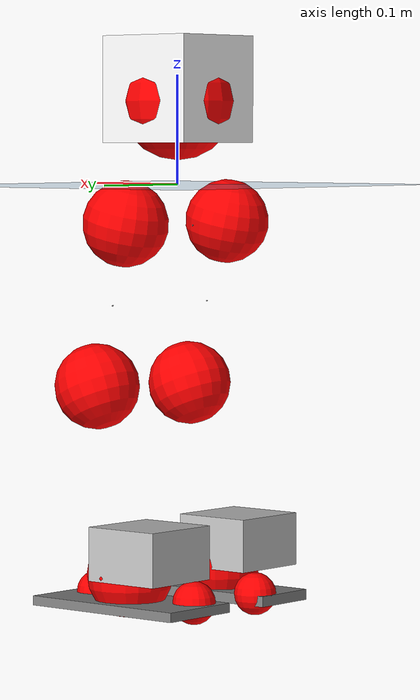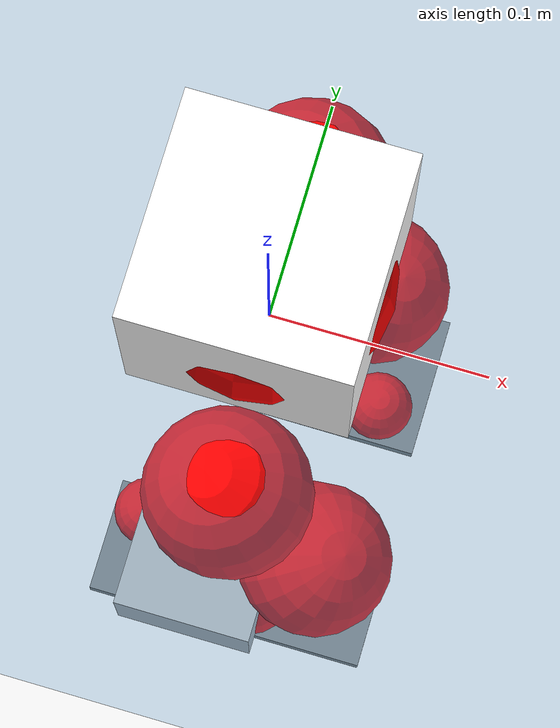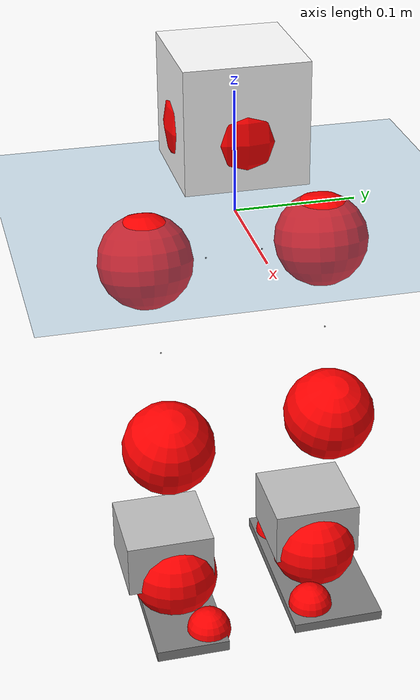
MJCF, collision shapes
<mujoco model="pi_12dof_release_v1">
  <compiler angle="radian" assetdir="assets" balanceinertia="true" inertiafromgeom="false"/>

  <option timestep="0.005" density="1.2" viscosity="2e-05"/>

  <size nkey="1"/>

  <visual>
    <quality shadowsize="8192"/>
    <map shadowclip="0.5"/>
  </visual>

  <default>
    <default class="/">
      <joint armature="0.01" damping="0.01" frictionloss="0.01"/>
      <geom contype="0" conaffinity="0" group="1" solref="-1000 -80"/>
      <site size="0.01 0.005 0.005" group="5"/>
      <general forcelimited="true" biastype="affine" gainprm="20" biasprm="0 -20 -0.5"/>
      <default class="foot">
        <geom size="0.0845 0.036 0.005" type="box" condim="6" group="4" priority="1" friction="0.9 0.2 0.2" solimp="0.015 1 0.005"/>
      </default>
      <default class="reward_collision_sphere">
        <geom group="5" rgba="1 0 0 1"/>
      </default>
    </default>
  </default>

  <asset>
    <texture type="skybox" colorspace="auto" name="//unnamed_texture_0" builtin="gradient" rgb1="0.95 0.95 0.95" rgb2="0.95 0.95 0.95" width="100" height="600"/>
    <texture type="2d" colorspace="auto" name="texplane" builtin="checker" rgb1="0.345 0.575 0.748" rgb2="0.345 0.575 0.748" markrgb="1 1 1" width="512" height="512"/>
    <material name="MatPlane" class="/" texture="texplane" texuniform="true" texrepeat="2 2" specular="0.9"/>
    <mesh name="baselink_1" class="/" file="baselink_1.STL"/>
    <mesh name="r_hip_pitch_link" class="/" file="r_hip_pitch_link.STL"/>
    <mesh name="r_hip_roll_link" class="/" file="r_hip_roll_link.STL"/>
    <mesh name="r_thigh_link" class="/" file="r_thigh_link.STL"/>
    <mesh name="r_calf_link" class="/" file="r_calf_link.STL"/>
    <mesh name="r_ankle_pitch_link" class="/" file="r_ankle_pitch_link.STL"/>
    <mesh name="r_ankle_roll_link" class="/" file="r_ankle_roll_link.STL"/>
    <mesh name="l_hip_pitch_link" class="/" file="l_hip_pitch_link.STL"/>
    <mesh name="l_hip_roll_link" class="/" file="l_hip_roll_link.STL"/>
    <mesh name="l_thigh_link" class="/" file="l_thigh_link.STL"/>
    <mesh name="l_calf_link" class="/" file="l_calf_link.STL"/>
    <mesh name="l_ankle_pitch_link" class="/" file="l_ankle_pitch_link.STL"/>
    <mesh name="l_ankle_roll_link" class="/" file="l_ankle_roll_link.STL"/>
  </asset>

  <worldbody>
    <geom name="floor" class="/" size="100 100 0.125" type="plane" group="0" material="MatPlane"/>
    <light name="toplight_shadow" class="/" pos="0 0 5" dir="0.0990148 0.0990148 -0.990148" type="directional" ambient="0.04 0.04 0.04" diffuse="0.55 0.55 0.55" specular="0.12 0.12 0.12"/>
    <light name="toplight_fill" class="/" pos="0 0 5" dir="0.0990148 0.0990148 -0.990148" type="directional" castshadow="false" ambient="0.04 0.04 0.04" diffuse="0.3 0.3 0.3" specular="0.08 0.08 0.08"/>
    <body name="trunk" pos="0.000839989 -0.0020855 -0.00246504" quat="0.999999 0.000527062 0.000786334 -0.000403667">
      <inertial pos="-0.000277221 0.000681894 0.0472156" quat="0.690071 0.000506653 0.0149443 0.723587" mass="2.06564" diaginertia="0.00474417 0.00691969 0.00751189"/>
      <joint name="//unnamed_joint_0" type="free"/>
      <geom name="//unnamed_geom_1" class="/" type="mesh" density="0" rgba="1 1 1 1" mesh="baselink_1"/>
      <geom name="//unnamed_geom_2" class="/" size="0.0488218 0.0488218 0.0488218" pos="0 0 0.0896386" type="box" rgba="1 1 1 1"/>
      <geom name="//unnamed_geom_3" class="reward_collision_sphere" size="0.0537039" pos="0 0 0.0784338"/>
      <site name="imu" class="/" pos="-8.39943e-05 -0.00348211 -0.00351039" size="0.00976435"/>
      <camera name="track" class="/" pos="0 -1.89512 0" quat="0.707107 0.707107 0 0" mode="trackcom"/>
      <camera name="ego_camera" class="/" pos="0.0645949 0 0.201687" quat="-0.5 -0.5 0.5 0.5"/>
      <body name="r_hip_pitch_link" pos="0.00158227 -0.0227206 -0.0358227" quat="0.992229 -2.10533e-05 -0.124422 -8.65175e-05">
        <inertial pos="0.000622459 -0.0537529 -0.000803701" quat="-0.00873828 0.706217 -0.0304266 0.707288" mass="0.347172" diaginertia="5.2862e-05 7.37893e-05 0.00015124"/>
        <joint name="r_hip_pitch_joint" class="/" pos="0 0 0" axis="-0.000569713 -0.999975 0.00709883" stiffness="0.0109221" range="-1.70136 1.29888" armature="0.00995736" damping="0.00762192" frictionloss="0.00956907"/>
        <geom name="//unnamed_geom_4" class="/" type="mesh" density="0" rgba="0.75294 0.75294 0.75294 1" mesh="r_hip_pitch_link"/>
        <geom name="//unnamed_geom_5" class="/" size="0.000488218 0.000488218 0.000488218" type="box" rgba="0.75294 0.75294 0.75294 1"/>
        <body name="r_hip_roll_link" pos="0.00100032 -0.0499281 0.00290188" quat="1 0.000430205 -5.54164e-05 -0.00062321">
          <inertial pos="0.000286705 -0.0030428 -0.0718818" quat="0.696176 -0.0790054 -0.0835709 0.708599" mass="0.37115" diaginertia="0.000156736 0.000208474 0.000226065"/>
          <joint name="r_hip_roll_joint" class="/" pos="0 0 0" axis="-0.999916 0.0108017 -0.0071203" range="-0.11953 0.518195" armature="0.0104286" damping="0.0135265" frictionloss="0.00977926"/>
          <geom name="//unnamed_geom_6" class="/" type="mesh" density="0" rgba="0.75294 0.75294 0.75294 1" mesh="r_hip_roll_link"/>
          <geom name="//unnamed_geom_7" class="/" size="0.000488218 0.000488218 0.000488218" type="box" rgba="0.75294 0.75294 0.75294 1"/>
          <geom name="//unnamed_geom_8" class="reward_collision_sphere" size="0.0390574"/>
          <body name="r_thigh_link" pos="-0.000455252 0.00685577 -0.0773866" quat="1 -0.00010715 0.00013945 -8.12977e-05">
            <inertial pos="0.000321339 -0.000809923 -0.0544648" quat="0.746115 0.665815 -0.000709694 -0.00169815" mass="0.105253" diaginertia="5.77608e-05 6.99937e-05 9.93615e-05"/>
            <joint name="r_thigh_joint" class="/" pos="0 0 0" axis="0.000754194 0.000566692 -1" range="-0.282823 0.611242" armature="0.0102163" damping="0.0138042" frictionloss="0.00939375"/>
            <geom name="//unnamed_geom_9" class="/" type="mesh" density="0" rgba="0.75294 0.75294 0.75294 1" mesh="r_thigh_link"/>
            <geom name="//unnamed_geom_10" class="/" size="0.000488218 0.000488218 0.000488218" type="box" rgba="0.75294 0.75294 0.75294 1"/>
            <body name="r_calf_link" pos="0.00171769 -7.48353e-05 -0.0811578" quat="0.947695 -6.56832e-06 0.319178 0.00085028">
              <inertial pos="-0.00210526 0.00212424 -0.0805907" quat="0.999985 -0.00302587 6.17296e-05 0.00465911" mass="0.723396" diaginertia="0.00161142 0.00267352 0.000314743"/>
              <joint name="r_calf_joint" class="/" pos="0 0 0" axis="-0.00414919 -0.99998 0.00467683" range="-1.70375 0.624701" armature="0.00973645" damping="0" frictionloss="0.00971128"/>
              <geom name="//unnamed_geom_11" class="/" type="mesh" density="0" rgba="0.75294 0.75294 0.75294 1" mesh="r_calf_link"/>
              <geom name="//unnamed_geom_12" class="/" size="0.000488218 0.000488218 0.000488218" type="box" rgba="0.75294 0.75294 0.75294 1"/>
              <geom name="//unnamed_geom_13" class="reward_collision_sphere" size="0.0390574"/>
              <body name="r_ankle_pitch_link" pos="-0.00284057 0.00436946 -0.15695" quat="0.980068 -0.000173635 -0.198662 8.87266e-05">
                <inertial pos="0.00655487 0.00119519 -0.000557125" quat="-0.00187606 0.698312 0.000298192 0.715791" mass="0.167585" diaginertia="0.000141151 0.000168351 0.000210239"/>
                <joint name="r_ankle_pitch_joint" class="/" pos="0 0 0" axis="0.00473929 -0.999956 -0.00811777" range="-1.33852 0.507361" armature="0.0100815" damping="0.00879724" frictionloss="0.00986925"/>
                <geom name="//unnamed_geom_14" class="/" type="mesh" density="0" rgba="0.75294 0.75294 0.75294 1" mesh="r_ankle_pitch_link"/>
                <geom name="//unnamed_geom_15" class="/" size="0.038081 0.0390574 0.0244109" type="box" rgba="0.75294 0.75294 0.75294 1"/>
                <body name="r_ankle_roll_link" pos="0.0626049 0.0060651 7.89572e-06" quat="1 -0.000107203 0.000625328 -0.000220262">
                  <inertial pos="-0.0230532 0.00238973 -0.0166304" quat="0.55845 0.441303 0.425449 0.558908" mass="0.475829" diaginertia="0.000509328 0.00079257 0.000477163"/>
                  <joint name="r_ankle_roll_joint" class="/" pos="0 0 0" axis="-0.999935 0.00192618 0.0112637" range="-0.180697 0.175571" armature="0.00990738" damping="0.0181391" frictionloss="0.0109804"/>
                  <geom name="//unnamed_geom_16" class="/" type="mesh" density="0" rgba="0.75294 0.75294 0.75294 1" mesh="r_ankle_roll_link"/>
                  <geom name="//unnamed_geom_17" class="/" type="mesh" rgba="0.75294 0.75294 0.75294 1" mesh="r_ankle_roll_link"/>
                  <geom name="right_foot" class="foot" size="0.0788678 0.0321212 0.00486458" pos="-0.0439245 0 -0.0493013"/>
                  <geom name="//unnamed_geom_19" class="reward_collision_sphere" size="0.0390574" pos="-0.0430633 0 -0.0224097"/>
                  <geom name="//unnamed_geom_20" class="reward_collision_sphere" size="0.0195287" pos="0.012919 0.0189512 -0.0448193"/>
                  <geom name="//unnamed_geom_21" class="reward_collision_sphere" size="0.0195287" pos="-0.103352 0.0189512 -0.0448193"/>
                  <site name="right_foot" class="foot" pos="-0.0439245 0 -0.0493013" size="0.00976435"/>
                </body>
              </body>
            </body>
          </body>
        </body>
      </body>
      <body name="l_hip_pitch_link" pos="-0.00268305 0.0251369 -0.0355164" quat="0.992215 0.000142478 -0.124534 -0.000552269">
        <inertial pos="0.00240168 0.0489032 0.00236543" quat="-0.0438419 0.702045 0.0358891 0.709875" mass="0.357413" diaginertia="5.76609e-05 7.49151e-05 0.000177258"/>
        <joint name="l_hip_pitch_joint" class="/" pos="0 0 0" axis="-0.00921766 0.999955 0.00242557" range="-1.23901 1.76382" armature="0.0101734" damping="0.00807376" frictionloss="0.010024"/>
        <geom name="//unnamed_geom_22" class="/" type="mesh" density="0" rgba="0.75294 0.75294 0.75294 1" mesh="l_hip_pitch_link"/>
        <geom name="//unnamed_geom_23" class="/" size="0.000488218 0.000488218 0.000488218" type="box" rgba="0.75294 0.75294 0.75294 1"/>
        <body name="l_hip_roll_link" pos="0.000487748 0.0505459 0.00330673" quat="1 0.000194162 8.14111e-06 0.000118546">
          <inertial pos="0.00105829 -0.00179614 -0.0663644" quat="0.698922 -0.0771144 -0.084955 0.705935" mass="0.365278" diaginertia="0.000152373 0.000218188 0.000227096"/>
          <joint name="l_hip_roll_joint" class="/" pos="0 0 0" axis="-0.999967 -0.00554963 -0.00586248" stiffness="0.0106984" range="-0.483328 0.158439" armature="0.0091846" damping="0.000313066" frictionloss="0.00851022"/>
          <geom name="//unnamed_geom_24" class="/" type="mesh" density="0" rgba="0.75294 0.75294 0.75294 1" mesh="l_hip_roll_link"/>
          <geom name="//unnamed_geom_25" class="/" size="0.000488218 0.000488218 0.000488218" type="box" rgba="0.75294 0.75294 0.75294 1"/>
          <geom name="//unnamed_geom_26" class="reward_collision_sphere" size="0.0390574"/>
          <body name="l_thigh_link" pos="-0.00325043 0.000317469 -0.0758864" quat="0.999999 0.000995397 0.000837472 -6.69846e-05">
            <inertial pos="-0.000795989 -0.000249197 -0.0543592" quat="0.6757 0.737172 0.00249399 0.00129005" mass="0.103065" diaginertia="5.86581e-05 7.17361e-05 0.000101914"/>
            <joint name="l_thigh_joint" class="/" pos="0 0 0" axis="-0.000546991 0.000254941 -1" stiffness="0.0075193" range="-0.554889 0.331712" armature="0.00836479" damping="0" frictionloss="0.011009"/>
            <geom name="//unnamed_geom_27" class="/" type="mesh" density="0" rgba="0.75294 0.75294 0.75294 1" mesh="l_thigh_link"/>
            <geom name="//unnamed_geom_28" class="/" size="0.000488218 0.000488218 0.000488218" type="box" rgba="0.75294 0.75294 0.75294 1"/>
            <body name="l_calf_link" pos="0.000472703 -0.000479693 -0.076592" quat="0.947358 -2.07931e-05 0.320176 0.000124121">
              <inertial pos="7.84279e-05 5.22578e-05 -0.0817407" quat="0.999996 0.000823193 0.000546204 0.00264915" mass="0.728645" diaginertia="0.00160644 0.00266177 0.000290395"/>
              <joint name="l_calf_joint" class="/" pos="0 0 0" axis="0.00740823 0.999936 0.00857307" stiffness="0.00732349" range="-0.636971 1.60417" armature="0.00845479" damping="0.00462694" frictionloss="0.0108897"/>
              <geom name="//unnamed_geom_29" class="/" type="mesh" density="0" rgba="0.75294 0.75294 0.75294 1" mesh="l_calf_link"/>
              <geom name="//unnamed_geom_30" class="/" size="0.000488218 0.000488218 0.000488218" type="box" rgba="0.75294 0.75294 0.75294 1"/>
              <geom name="//unnamed_geom_31" class="reward_collision_sphere" size="0.0390574"/>
              <body name="l_ankle_pitch_link" pos="-0.0018132 0.0018339 -0.160745" quat="0.980032 0.00033047 -0.198835 -0.00122056">
                <inertial pos="0.00424143 -0.00248335 -0.000975537" quat="-0.00375714 0.708692 -0.00117304 0.705507" mass="0.172636" diaginertia="0.000148865 0.000168248 0.000210674"/>
                <joint name="l_ankle_pitch_joint" class="/" pos="0 0 0" axis="-0.000481475 1 0.000429679" range="-0.530167 1.31985" armature="0.00970152" damping="0.0102431" frictionloss="0.00862632"/>
                <geom name="//unnamed_geom_32" class="/" type="mesh" density="0" rgba="0.75294 0.75294 0.75294 1" mesh="l_ankle_pitch_link"/>
                <geom name="//unnamed_geom_33" class="/" size="0.038081 0.0390574 0.0244109" type="box" rgba="0.75294 0.75294 0.75294 1"/>
                <body name="l_ankle_roll_link" pos="0.0662972 0.000345137 0.00137144" quat="1 1.80116e-05 -1.01612e-05 -9.61209e-06">
                  <inertial pos="-0.0239634 -0.000382783 -0.0144704" quat="0.561 0.429609 0.432815 0.559808" mass="0.498442" diaginertia="0.000555194 0.000819525 0.000503645"/>
                  <joint name="l_ankle_roll_joint" class="/" pos="0 0 0" axis="-0.999994 -0.00329051 -0.000900323" range="-0.17518 0.139829" armature="0.00937529" damping="0.00628131" frictionloss="0.00845455"/>
                  <geom name="//unnamed_geom_34" class="/" type="mesh" density="0" rgba="0.75294 0.75294 0.75294 1" mesh="l_ankle_roll_link"/>
                  <geom name="//unnamed_geom_35" class="/" type="mesh" rgba="0.75294 0.75294 0.75294 1" mesh="l_ankle_roll_link"/>
                  <geom name="left_foot" class="foot" size="0.0829987 0.0402556 0.00431697" pos="-0.0439245 0 -0.0493013"/>
                  <geom name="//unnamed_geom_37" class="reward_collision_sphere" size="0.0390574" pos="-0.0430633 0 -0.0224097"/>
                  <geom name="//unnamed_geom_38" class="reward_collision_sphere" size="0.0195287" pos="0.012919 -0.0189512 -0.0448193"/>
                  <geom name="//unnamed_geom_39" class="reward_collision_sphere" size="0.0195287" pos="-0.103352 -0.0189512 -0.0448193"/>
                  <site name="left_foot" class="foot" pos="-0.0439245 0 -0.0493013" size="0.00976435"/>
                </body>
              </body>
            </body>
          </body>
        </body>
      </body>
    </body>
  </worldbody>

  <contact>
    <pair class="/" geom1="floor" geom2="right_foot" name="//unnamed_contact_1"/>
    <pair class="/" geom1="floor" geom2="left_foot" name="//unnamed_contact_0"/>
  </contact>

  <actuator>
    <general name="r_hip_pitch_joint" class="/" joint="r_hip_pitch_joint" forcerange="-18.4716 18.4716" gainprm="18.2682" biasprm="0 -18.2682 -0.544485"/>
    <general name="r_hip_roll_joint" class="/" joint="r_hip_roll_joint" forcerange="-19.4643 19.4643" gainprm="18.2682" biasprm="0 -18.2682 -0.544485"/>
    <general name="r_thigh_joint" class="/" joint="r_thigh_joint" forcerange="-20.7816 20.7816" gainprm="18.2682" biasprm="0 -18.2682 -0.544485"/>
    <general name="r_calf_joint" class="/" joint="r_calf_joint" forcerange="-20.1062 20.1062" gainprm="18.2682" biasprm="0 -18.2682 -0.544485"/>
    <general name="r_ankle_pitch_joint" class="/" joint="r_ankle_pitch_joint" forcerange="-20.269 20.269" gainprm="18.2682" biasprm="0 -18.2682 -0.544485"/>
    <general name="r_ankle_roll_joint" class="/" joint="r_ankle_roll_joint" forcerange="-21.5638 21.5638" gainprm="18.2682" biasprm="0 -18.2682 -0.544485"/>
    <general name="l_hip_pitch_joint" class="/" joint="l_hip_pitch_joint" forcerange="-22.7379 22.7379" gainprm="18.2682" biasprm="0 -18.2682 -0.544485"/>
    <general name="l_hip_roll_joint" class="/" joint="l_hip_roll_joint" forcerange="-20.4941 20.4941" gainprm="18.2682" biasprm="0 -18.2682 -0.544485"/>
    <general name="l_thigh_joint" class="/" joint="l_thigh_joint" forcerange="-19.858 19.858" gainprm="18.2682" biasprm="0 -18.2682 -0.544485"/>
    <general name="l_calf_joint" class="/" joint="l_calf_joint" forcerange="-18.4416 18.4416" gainprm="18.2682" biasprm="0 -18.2682 -0.544485"/>
    <general name="l_ankle_pitch_joint" class="/" joint="l_ankle_pitch_joint" forcerange="-21.2148 21.2148" gainprm="18.2682" biasprm="0 -18.2682 -0.544485"/>
    <general name="l_ankle_roll_joint" class="/" joint="l_ankle_roll_joint" forcerange="-19.1844 19.1844" gainprm="18.2682" biasprm="0 -18.2682 -0.544485"/>
  </actuator>

  <sensor>
    <gyro site="imu" name="imu_angular_velocity"/>
    <velocimeter site="imu" name="imu_linear_velocity"/>
    <framelinvel objtype="site" objname="left_foot" name="left_foot_global_linear_velocity"/>
    <framelinvel objtype="site" objname="right_foot" name="right_foot_global_linear_velocity"/>
  </sensor>

  <keyframe>
    <key name="home" qpos="0 0 0.291 1 0 0 0 0.4 0 0 -0.8 0.4 0 -0.4 0 0 0.8 -0.4 0"/>
  </keyframe>
</mujoco>
